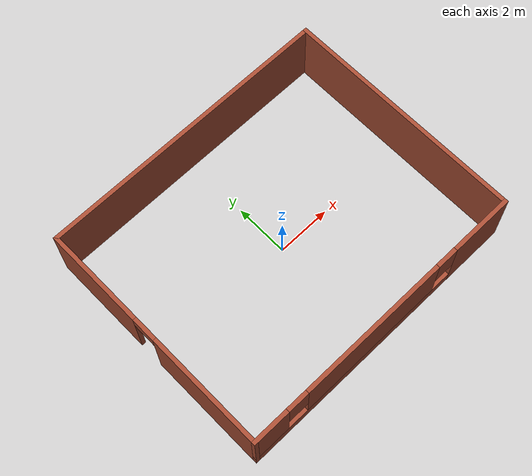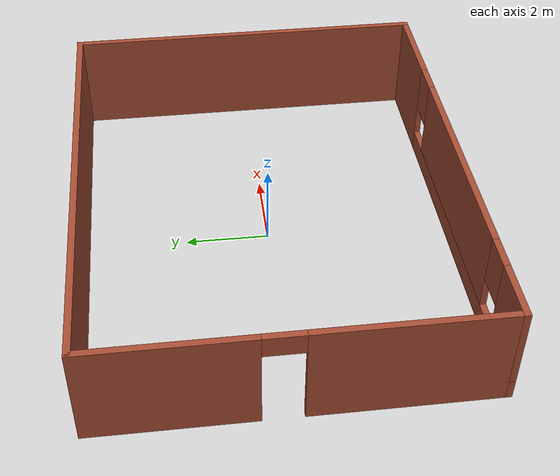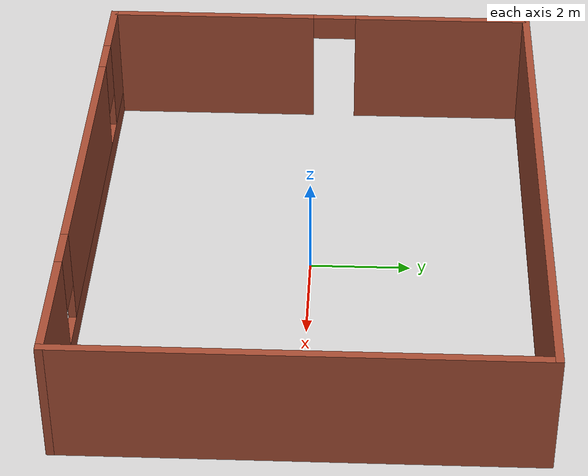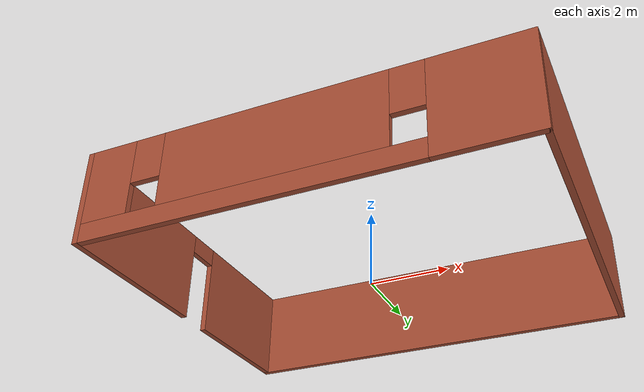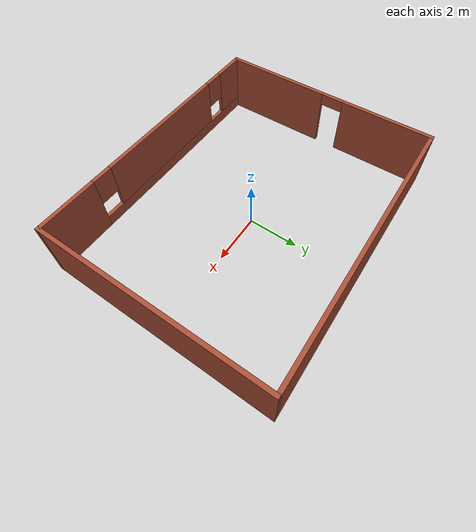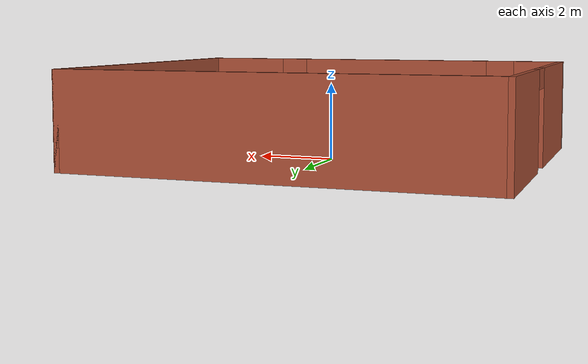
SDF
<?xml version='1.0'?>
<sdf version='1.6'>
  <model name='basicRecBuilding'>
    <link name='Wall_2'>
      <pose frame=''>-5.425 0 0 0 -0 1.5708</pose>
      <self_collide>0</self_collide>
      <kinematic>0</kinematic>
      <visual name='Wall_2_Visual_2'>
        <pose frame=''>0.324133 0 2.25 0 -0 0</pose>
        <geometry>
          <box>
            <size>0.9 0.15 0.5</size>
          </box>
        </geometry>
        <material>
          <script>
            <uri>file://media/materials/scripts/gazebo.material</uri>
            <name>Gazebo/Bricks</name>
          </script>
          <ambient>1 1 1 1</ambient>
          <shader type='pixel'/>
          <diffuse>1 1 1 1</diffuse>
          <specular>0.2 0.2 0.2 1</specular>
          <emissive>0 0 0 1</emissive>
        </material>
        <meta>
          <layer>0</layer>
        </meta>
        <transparency>0</transparency>
        <cast_shadows>1</cast_shadows>
      </visual>
      <visual name='Wall_2_Visual_1'>
        <pose frame=''>2.63707 0 1.25 0 -0 0</pose>
        <geometry>
          <box>
            <size>3.72587 0.15 2.5</size>
          </box>
        </geometry>
        <material>
          <script>
            <uri>file://media/materials/scripts/gazebo.material</uri>
            <name>Gazebo/Bricks</name>
          </script>
          <ambient>1 1 1 1</ambient>
          <shader type='pixel'/>
          <diffuse>1 1 1 1</diffuse>
          <specular>0.2 0.2 0.2 1</specular>
          <emissive>0 0 0 1</emissive>
        </material>
        <meta>
          <layer>0</layer>
        </meta>
        <transparency>0</transparency>
        <cast_shadows>1</cast_shadows>
      </visual>
      <visual name='Wall_2_Visual_0'>
        <pose frame=''>-2.31293 0 1.25 0 -0 0</pose>
        <geometry>
          <box>
            <size>4.37413 0.15 2.5</size>
          </box>
        </geometry>
        <material>
          <script>
            <uri>file://media/materials/scripts/gazebo.material</uri>
            <name>Gazebo/Bricks</name>
          </script>
          <ambient>1 1 1 1</ambient>
          <shader type='pixel'/>
          <diffuse>1 1 1 1</diffuse>
          <specular>0.2 0.2 0.2 1</specular>
          <emissive>0 0 0 1</emissive>
        </material>
        <meta>
          <layer>0</layer>
        </meta>
        <transparency>0</transparency>
        <cast_shadows>1</cast_shadows>
      </visual>
      <collision name='Wall_2_Collision_1'>
        <laser_retro>0</laser_retro>
        <max_contacts>10</max_contacts>
        <pose frame=''>2.63707 0 1.25 0 -0 0</pose>
        <geometry>
          <box>
            <size>3.72587 0.15 2.5</size>
          </box>
        </geometry>
        <surface>
          <friction>
            <ode>
              <mu>1</mu>
              <mu2>1</mu2>
              <fdir1>0 0 0</fdir1>
              <slip1>0</slip1>
              <slip2>0</slip2>
            </ode>
            <torsional>
              <coefficient>1</coefficient>
              <patch_radius>0</patch_radius>
              <surface_radius>0</surface_radius>
              <use_patch_radius>1</use_patch_radius>
              <ode>
                <slip>0</slip>
              </ode>
            </torsional>
          </friction>
          <bounce>
            <restitution_coefficient>0</restitution_coefficient>
            <threshold>1e+06</threshold>
          </bounce>
          <contact>
            <collide_without_contact>0</collide_without_contact>
            <collide_without_contact_bitmask>1</collide_without_contact_bitmask>
            <collide_bitmask>1</collide_bitmask>
            <ode>
              <soft_cfm>0</soft_cfm>
              <soft_erp>0.2</soft_erp>
              <kp>1e+13</kp>
              <kd>1</kd>
              <max_vel>0.01</max_vel>
              <min_depth>0</min_depth>
            </ode>
            <bullet>
              <split_impulse>1</split_impulse>
              <split_impulse_penetration_threshold>-0.01</split_impulse_penetration_threshold>
              <soft_cfm>0</soft_cfm>
              <soft_erp>0.2</soft_erp>
              <kp>1e+13</kp>
              <kd>1</kd>
            </bullet>
          </contact>
        </surface>
      </collision>
      <collision name='Wall_2_Collision_0'>
        <laser_retro>0</laser_retro>
        <max_contacts>10</max_contacts>
        <pose frame=''>-2.31293 0 1.25 0 -0 0</pose>
        <geometry>
          <box>
            <size>4.37413 0.15 2.5</size>
          </box>
        </geometry>
        <surface>
          <friction>
            <ode>
              <mu>1</mu>
              <mu2>1</mu2>
              <fdir1>0 0 0</fdir1>
              <slip1>0</slip1>
              <slip2>0</slip2>
            </ode>
            <torsional>
              <coefficient>1</coefficient>
              <patch_radius>0</patch_radius>
              <surface_radius>0</surface_radius>
              <use_patch_radius>1</use_patch_radius>
              <ode>
                <slip>0</slip>
              </ode>
            </torsional>
          </friction>
          <bounce>
            <restitution_coefficient>0</restitution_coefficient>
            <threshold>1e+06</threshold>
          </bounce>
          <contact>
            <collide_without_contact>0</collide_without_contact>
            <collide_without_contact_bitmask>1</collide_without_contact_bitmask>
            <collide_bitmask>1</collide_bitmask>
            <ode>
              <soft_cfm>0</soft_cfm>
              <soft_erp>0.2</soft_erp>
              <kp>1e+13</kp>
              <kd>1</kd>
              <max_vel>0.01</max_vel>
              <min_depth>0</min_depth>
            </ode>
            <bullet>
              <split_impulse>1</split_impulse>
              <split_impulse_penetration_threshold>-0.01</split_impulse_penetration_threshold>
              <soft_cfm>0</soft_cfm>
              <soft_erp>0.2</soft_erp>
              <kp>1e+13</kp>
              <kd>1</kd>
            </bullet>
          </contact>
        </surface>
      </collision>
      <collision name='Wall_2_Collision_2'>
        <laser_retro>0</laser_retro>
        <max_contacts>10</max_contacts>
        <pose frame=''>0.324133 0 2.25 0 -0 0</pose>
        <geometry>
          <box>
            <size>0.9 0.15 0.5</size>
          </box>
        </geometry>
        <surface>
          <friction>
            <ode>
              <mu>1</mu>
              <mu2>1</mu2>
              <fdir1>0 0 0</fdir1>
              <slip1>0</slip1>
              <slip2>0</slip2>
            </ode>
            <torsional>
              <coefficient>1</coefficient>
              <patch_radius>0</patch_radius>
              <surface_radius>0</surface_radius>
              <use_patch_radius>1</use_patch_radius>
              <ode>
                <slip>0</slip>
              </ode>
            </torsional>
          </friction>
          <bounce>
            <restitution_coefficient>0</restitution_coefficient>
            <threshold>1e+06</threshold>
          </bounce>
          <contact>
            <collide_without_contact>0</collide_without_contact>
            <collide_without_contact_bitmask>1</collide_without_contact_bitmask>
            <collide_bitmask>1</collide_bitmask>
            <ode>
              <soft_cfm>0</soft_cfm>
              <soft_erp>0.2</soft_erp>
              <kp>1e+13</kp>
              <kd>1</kd>
              <max_vel>0.01</max_vel>
              <min_depth>0</min_depth>
            </ode>
            <bullet>
              <split_impulse>1</split_impulse>
              <split_impulse_penetration_threshold>-0.01</split_impulse_penetration_threshold>
              <soft_cfm>0</soft_cfm>
              <soft_erp>0.2</soft_erp>
              <kp>1e+13</kp>
              <kd>1</kd>
            </bullet>
          </contact>
        </surface>
      </collision>
    </link>
    <link name='Wall_3'>
      <pose frame=''>0 4.425 0 0 -0 0</pose>
      <self_collide>0</self_collide>
      <kinematic>0</kinematic>
      <visual name='Wall_3_Visual'>
        <pose frame=''>0 0 1.25 0 -0 0</pose>
        <geometry>
          <box>
            <size>11 0.15 2.5</size>
          </box>
        </geometry>
        <material>
          <script>
            <uri>file://media/materials/scripts/gazebo.material</uri>
            <name>Gazebo/Bricks</name>
          </script>
          <ambient>0.760784 0.662745 0.627451 1</ambient>
          <shader type='pixel'/>
          <diffuse>1 1 1 1</diffuse>
          <specular>0.2 0.2 0.2 1</specular>
          <emissive>0 0 0 1</emissive>
        </material>
        <meta>
          <layer>0</layer>
        </meta>
        <transparency>0</transparency>
        <cast_shadows>1</cast_shadows>
      </visual>
      <collision name='Wall_3_Collision'>
        <laser_retro>0</laser_retro>
        <max_contacts>10</max_contacts>
        <pose frame=''>0 0 1.25 0 -0 0</pose>
        <geometry>
          <box>
            <size>11 0.15 2.5</size>
          </box>
        </geometry>
        <surface>
          <friction>
            <ode>
              <mu>1</mu>
              <mu2>1</mu2>
              <fdir1>0 0 0</fdir1>
              <slip1>0</slip1>
              <slip2>0</slip2>
            </ode>
            <torsional>
              <coefficient>1</coefficient>
              <patch_radius>0</patch_radius>
              <surface_radius>0</surface_radius>
              <use_patch_radius>1</use_patch_radius>
              <ode>
                <slip>0</slip>
              </ode>
            </torsional>
          </friction>
          <bounce>
            <restitution_coefficient>0</restitution_coefficient>
            <threshold>1e+06</threshold>
          </bounce>
          <contact>
            <collide_without_contact>0</collide_without_contact>
            <collide_without_contact_bitmask>1</collide_without_contact_bitmask>
            <collide_bitmask>1</collide_bitmask>
            <ode>
              <soft_cfm>0</soft_cfm>
              <soft_erp>0.2</soft_erp>
              <kp>1e+13</kp>
              <kd>1</kd>
              <max_vel>0.01</max_vel>
              <min_depth>0</min_depth>
            </ode>
            <bullet>
              <split_impulse>1</split_impulse>
              <split_impulse_penetration_threshold>-0.01</split_impulse_penetration_threshold>
              <soft_cfm>0</soft_cfm>
              <soft_erp>0.2</soft_erp>
              <kp>1e+13</kp>
              <kd>1</kd>
            </bullet>
          </contact>
        </surface>
      </collision>
    </link>
    <link name='Wall_4'>
      <pose frame=''>5.425 0 0 0 0 -1.5708</pose>
      <self_collide>0</self_collide>
      <kinematic>0</kinematic>
      <visual name='Wall_4_Visual'>
        <pose frame=''>0 0 1.25 0 -0 0</pose>
        <geometry>
          <box>
            <size>9 0.15 2.5</size>
          </box>
        </geometry>
        <material>
          <script>
            <uri>file://media/materials/scripts/gazebo.material</uri>
            <name>Gazebo/Bricks</name>
          </script>
          <ambient>0.760784 0.662745 0.627451 1</ambient>
          <shader type='pixel'/>
          <diffuse>1 1 1 1</diffuse>
          <specular>0.2 0.2 0.2 1</specular>
          <emissive>0 0 0 1</emissive>
        </material>
        <meta>
          <layer>0</layer>
        </meta>
        <transparency>0</transparency>
        <cast_shadows>1</cast_shadows>
      </visual>
      <collision name='Wall_4_Collision'>
        <laser_retro>0</laser_retro>
        <max_contacts>10</max_contacts>
        <pose frame=''>0 0 1.25 0 -0 0</pose>
        <geometry>
          <box>
            <size>9 0.15 2.5</size>
          </box>
        </geometry>
        <surface>
          <friction>
            <ode>
              <mu>1</mu>
              <mu2>1</mu2>
              <fdir1>0 0 0</fdir1>
              <slip1>0</slip1>
              <slip2>0</slip2>
            </ode>
            <torsional>
              <coefficient>1</coefficient>
              <patch_radius>0</patch_radius>
              <surface_radius>0</surface_radius>
              <use_patch_radius>1</use_patch_radius>
              <ode>
                <slip>0</slip>
              </ode>
            </torsional>
          </friction>
          <bounce>
            <restitution_coefficient>0</restitution_coefficient>
            <threshold>1e+06</threshold>
          </bounce>
          <contact>
            <collide_without_contact>0</collide_without_contact>
            <collide_without_contact_bitmask>1</collide_without_contact_bitmask>
            <collide_bitmask>1</collide_bitmask>
            <ode>
              <soft_cfm>0</soft_cfm>
              <soft_erp>0.2</soft_erp>
              <kp>1e+13</kp>
              <kd>1</kd>
              <max_vel>0.01</max_vel>
              <min_depth>0</min_depth>
            </ode>
            <bullet>
              <split_impulse>1</split_impulse>
              <split_impulse_penetration_threshold>-0.01</split_impulse_penetration_threshold>
              <soft_cfm>0</soft_cfm>
              <soft_erp>0.2</soft_erp>
              <kp>1e+13</kp>
              <kd>1</kd>
            </bullet>
          </contact>
        </surface>
      </collision>
    </link>
    <link name='Wall_5'>
      <pose frame=''>0 -4.425 0 0 -0 3.14159</pose>
      <self_collide>0</self_collide>
      <kinematic>0</kinematic>
      <visual name='Wall_5_Visual_0'>
        <pose frame=''>-4.30944 0 1.25 0 -0 0</pose>
        <geometry>
          <box>
            <size>2.38112 0.15 2.5</size>
          </box>
        </geometry>
        <material>
          <script>
            <uri>file://media/materials/scripts/gazebo.material</uri>
            <name>Gazebo/Bricks</name>
          </script>
          <ambient>0.760784 0.662745 0.627451 1</ambient>
          <shader type='pixel'/>
          <diffuse>1 1 1 1</diffuse>
          <specular>0.2 0.2 0.2 1</specular>
          <emissive>0 0 0 1</emissive>
        </material>
        <meta>
          <layer>0</layer>
        </meta>
        <transparency>0</transparency>
        <cast_shadows>1</cast_shadows>
      </visual>
      <visual name='Wall_5_Visual_1'>
        <pose frame=''>1.19056 0 0.25 0 -0 0</pose>
        <geometry>
          <box>
            <size>8.61888 0.15 0.5</size>
          </box>
        </geometry>
        <material>
          <script>
            <uri>file://media/materials/scripts/gazebo.material</uri>
            <name>Gazebo/Bricks</name>
          </script>
          <ambient>0.760784 0.662745 0.627451 1</ambient>
          <shader type='pixel'/>
          <diffuse>1 1 1 1</diffuse>
          <specular>0.2 0.2 0.2 1</specular>
          <emissive>0 0 0 1</emissive>
        </material>
        <meta>
          <layer>0</layer>
        </meta>
        <transparency>0</transparency>
        <cast_shadows>1</cast_shadows>
      </visual>
      <visual name='Wall_5_Visual_2'>
        <pose frame=''>0.491179 0 1.5 0 -0 0</pose>
        <geometry>
          <box>
            <size>5.62012 0.15 2</size>
          </box>
        </geometry>
        <material>
          <script>
            <uri>file://media/materials/scripts/gazebo.material</uri>
            <name>Gazebo/Bricks</name>
          </script>
          <ambient>0.760784 0.662745 0.627451 1</ambient>
          <shader type='pixel'/>
          <diffuse>1 1 1 1</diffuse>
          <specular>0.2 0.2 0.2 1</specular>
          <emissive>0 0 0 1</emissive>
        </material>
        <meta>
          <layer>0</layer>
        </meta>
        <transparency>0</transparency>
        <cast_shadows>1</cast_shadows>
      </visual>
      <visual name='Wall_5_Visual_3'>
        <pose frame=''>4.80062 0 1.5 0 -0 0</pose>
        <geometry>
          <box>
            <size>1.39876 0.15 2</size>
          </box>
        </geometry>
        <material>
          <script>
            <uri>file://media/materials/scripts/gazebo.material</uri>
            <name>Gazebo/Bricks</name>
          </script>
          <ambient>0.760784 0.662745 0.627451 1</ambient>
          <shader type='pixel'/>
          <diffuse>1 1 1 1</diffuse>
          <specular>0.2 0.2 0.2 1</specular>
          <emissive>0 0 0 1</emissive>
        </material>
        <meta>
          <layer>0</layer>
        </meta>
        <transparency>0</transparency>
        <cast_shadows>1</cast_shadows>
      </visual>
      <visual name='Wall_5_Visual_4'>
        <pose frame=''>-2.71888 0 1.9 0 -0 0</pose>
        <geometry>
          <box>
            <size>0.8 0.15 1.2</size>
          </box>
        </geometry>
        <material>
          <script>
            <uri>file://media/materials/scripts/gazebo.material</uri>
            <name>Gazebo/Bricks</name>
          </script>
          <ambient>0.760784 0.662745 0.627451 1</ambient>
          <shader type='pixel'/>
          <diffuse>1 1 1 1</diffuse>
          <specular>0.2 0.2 0.2 1</specular>
          <emissive>0 0 0 1</emissive>
        </material>
        <meta>
          <layer>0</layer>
        </meta>
        <transparency>0</transparency>
        <cast_shadows>1</cast_shadows>
      </visual>
      <visual name='Wall_5_Visual_5'>
        <pose frame=''>3.70124 0 1.9 0 -0 0</pose>
        <geometry>
          <box>
            <size>0.8 0.15 1.2</size>
          </box>
        </geometry>
        <material>
          <script>
            <uri>file://media/materials/scripts/gazebo.material</uri>
            <name>Gazebo/Bricks</name>
          </script>
          <ambient>0.760784 0.662745 0.627451 1</ambient>
          <shader type='pixel'/>
          <diffuse>1 1 1 1</diffuse>
          <specular>0.2 0.2 0.2 1</specular>
          <emissive>0 0 0 1</emissive>
        </material>
        <meta>
          <layer>0</layer>
        </meta>
        <transparency>0</transparency>
        <cast_shadows>1</cast_shadows>
      </visual>
      <collision name='Wall_5_Collision_0'>
        <laser_retro>0</laser_retro>
        <max_contacts>10</max_contacts>
        <pose frame=''>-4.30944 0 1.25 0 -0 0</pose>
        <geometry>
          <box>
            <size>2.38112 0.15 2.5</size>
          </box>
        </geometry>
        <surface>
          <friction>
            <ode>
              <mu>1</mu>
              <mu2>1</mu2>
              <fdir1>0 0 0</fdir1>
              <slip1>0</slip1>
              <slip2>0</slip2>
            </ode>
            <torsional>
              <coefficient>1</coefficient>
              <patch_radius>0</patch_radius>
              <surface_radius>0</surface_radius>
              <use_patch_radius>1</use_patch_radius>
              <ode>
                <slip>0</slip>
              </ode>
            </torsional>
          </friction>
          <bounce>
            <restitution_coefficient>0</restitution_coefficient>
            <threshold>1e+06</threshold>
          </bounce>
          <contact>
            <collide_without_contact>0</collide_without_contact>
            <collide_without_contact_bitmask>1</collide_without_contact_bitmask>
            <collide_bitmask>1</collide_bitmask>
            <ode>
              <soft_cfm>0</soft_cfm>
              <soft_erp>0.2</soft_erp>
              <kp>1e+13</kp>
              <kd>1</kd>
              <max_vel>0.01</max_vel>
              <min_depth>0</min_depth>
            </ode>
            <bullet>
              <split_impulse>1</split_impulse>
              <split_impulse_penetration_threshold>-0.01</split_impulse_penetration_threshold>
              <soft_cfm>0</soft_cfm>
              <soft_erp>0.2</soft_erp>
              <kp>1e+13</kp>
              <kd>1</kd>
            </bullet>
          </contact>
        </surface>
      </collision>
      <collision name='Wall_5_Collision_1'>
        <laser_retro>0</laser_retro>
        <max_contacts>10</max_contacts>
        <pose frame=''>1.19056 0 0.25 0 -0 0</pose>
        <geometry>
          <box>
            <size>8.61888 0.15 0.5</size>
          </box>
        </geometry>
        <surface>
          <friction>
            <ode>
              <mu>1</mu>
              <mu2>1</mu2>
              <fdir1>0 0 0</fdir1>
              <slip1>0</slip1>
              <slip2>0</slip2>
            </ode>
            <torsional>
              <coefficient>1</coefficient>
              <patch_radius>0</patch_radius>
              <surface_radius>0</surface_radius>
              <use_patch_radius>1</use_patch_radius>
              <ode>
                <slip>0</slip>
              </ode>
            </torsional>
          </friction>
          <bounce>
            <restitution_coefficient>0</restitution_coefficient>
            <threshold>1e+06</threshold>
          </bounce>
          <contact>
            <collide_without_contact>0</collide_without_contact>
            <collide_without_contact_bitmask>1</collide_without_contact_bitmask>
            <collide_bitmask>1</collide_bitmask>
            <ode>
              <soft_cfm>0</soft_cfm>
              <soft_erp>0.2</soft_erp>
              <kp>1e+13</kp>
              <kd>1</kd>
              <max_vel>0.01</max_vel>
              <min_depth>0</min_depth>
            </ode>
            <bullet>
              <split_impulse>1</split_impulse>
              <split_impulse_penetration_threshold>-0.01</split_impulse_penetration_threshold>
              <soft_cfm>0</soft_cfm>
              <soft_erp>0.2</soft_erp>
              <kp>1e+13</kp>
              <kd>1</kd>
            </bullet>
          </contact>
        </surface>
      </collision>
      <collision name='Wall_5_Collision_2'>
        <laser_retro>0</laser_retro>
        <max_contacts>10</max_contacts>
        <pose frame=''>0.491179 0 1.5 0 -0 0</pose>
        <geometry>
          <box>
            <size>5.62012 0.15 2</size>
          </box>
        </geometry>
        <surface>
          <friction>
            <ode>
              <mu>1</mu>
              <mu2>1</mu2>
              <fdir1>0 0 0</fdir1>
              <slip1>0</slip1>
              <slip2>0</slip2>
            </ode>
            <torsional>
              <coefficient>1</coefficient>
              <patch_radius>0</patch_radius>
              <surface_radius>0</surface_radius>
              <use_patch_radius>1</use_patch_radius>
              <ode>
                <slip>0</slip>
              </ode>
            </torsional>
          </friction>
          <bounce>
            <restitution_coefficient>0</restitution_coefficient>
            <threshold>1e+06</threshold>
          </bounce>
          <contact>
            <collide_without_contact>0</collide_without_contact>
            <collide_without_contact_bitmask>1</collide_without_contact_bitmask>
            <collide_bitmask>1</collide_bitmask>
            <ode>
              <soft_cfm>0</soft_cfm>
              <soft_erp>0.2</soft_erp>
              <kp>1e+13</kp>
              <kd>1</kd>
              <max_vel>0.01</max_vel>
              <min_depth>0</min_depth>
            </ode>
            <bullet>
              <split_impulse>1</split_impulse>
              <split_impulse_penetration_threshold>-0.01</split_impulse_penetration_threshold>
              <soft_cfm>0</soft_cfm>
              <soft_erp>0.2</soft_erp>
              <kp>1e+13</kp>
              <kd>1</kd>
            </bullet>
          </contact>
        </surface>
      </collision>
      <collision name='Wall_5_Collision_3'>
        <laser_retro>0</laser_retro>
        <max_contacts>10</max_contacts>
        <pose frame=''>4.80062 0 1.5 0 -0 0</pose>
        <geometry>
          <box>
            <size>1.39876 0.15 2</size>
          </box>
        </geometry>
        <surface>
          <friction>
            <ode>
              <mu>1</mu>
              <mu2>1</mu2>
              <fdir1>0 0 0</fdir1>
              <slip1>0</slip1>
              <slip2>0</slip2>
            </ode>
            <torsional>
              <coefficient>1</coefficient>
              <patch_radius>0</patch_radius>
              <surface_radius>0</surface_radius>
              <use_patch_radius>1</use_patch_radius>
              <ode>
                <slip>0</slip>
              </ode>
            </torsional>
          </friction>
          <bounce>
            <restitution_coefficient>0</restitution_coefficient>
            <threshold>1e+06</threshold>
          </bounce>
          <contact>
            <collide_without_contact>0</collide_without_contact>
            <collide_without_contact_bitmask>1</collide_without_contact_bitmask>
            <collide_bitmask>1</collide_bitmask>
            <ode>
              <soft_cfm>0</soft_cfm>
              <soft_erp>0.2</soft_erp>
              <kp>1e+13</kp>
              <kd>1</kd>
              <max_vel>0.01</max_vel>
              <min_depth>0</min_depth>
            </ode>
            <bullet>
              <split_impulse>1</split_impulse>
              <split_impulse_penetration_threshold>-0.01</split_impulse_penetration_threshold>
              <soft_cfm>0</soft_cfm>
              <soft_erp>0.2</soft_erp>
              <kp>1e+13</kp>
              <kd>1</kd>
            </bullet>
          </contact>
        </surface>
      </collision>
      <collision name='Wall_5_Collision_4'>
        <laser_retro>0</laser_retro>
        <max_contacts>10</max_contacts>
        <pose frame=''>-2.71888 0 1.9 0 -0 0</pose>
        <geometry>
          <box>
            <size>0.8 0.15 1.2</size>
          </box>
        </geometry>
        <surface>
          <friction>
            <ode>
              <mu>1</mu>
              <mu2>1</mu2>
              <fdir1>0 0 0</fdir1>
              <slip1>0</slip1>
              <slip2>0</slip2>
            </ode>
            <torsional>
              <coefficient>1</coefficient>
              <patch_radius>0</patch_radius>
              <surface_radius>0</surface_radius>
              <use_patch_radius>1</use_patch_radius>
              <ode>
                <slip>0</slip>
              </ode>
            </torsional>
          </friction>
          <bounce>
            <restitution_coefficient>0</restitution_coefficient>
            <threshold>1e+06</threshold>
          </bounce>
          <contact>
            <collide_without_contact>0</collide_without_contact>
            <collide_without_contact_bitmask>1</collide_without_contact_bitmask>
            <collide_bitmask>1</collide_bitmask>
            <ode>
              <soft_cfm>0</soft_cfm>
              <soft_erp>0.2</soft_erp>
              <kp>1e+13</kp>
              <kd>1</kd>
              <max_vel>0.01</max_vel>
              <min_depth>0</min_depth>
            </ode>
            <bullet>
              <split_impulse>1</split_impulse>
              <split_impulse_penetration_threshold>-0.01</split_impulse_penetration_threshold>
              <soft_cfm>0</soft_cfm>
              <soft_erp>0.2</soft_erp>
              <kp>1e+13</kp>
              <kd>1</kd>
            </bullet>
          </contact>
        </surface>
      </collision>
      <collision name='Wall_5_Collision_5'>
        <laser_retro>0</laser_retro>
        <max_contacts>10</max_contacts>
        <pose frame=''>3.70124 0 1.9 0 -0 0</pose>
        <geometry>
          <box>
            <size>0.8 0.15 1.2</size>
          </box>
        </geometry>
        <surface>
          <friction>
            <ode>
              <mu>1</mu>
              <mu2>1</mu2>
              <fdir1>0 0 0</fdir1>
              <slip1>0</slip1>
              <slip2>0</slip2>
            </ode>
            <torsional>
              <coefficient>1</coefficient>
              <patch_radius>0</patch_radius>
              <surface_radius>0</surface_radius>
              <use_patch_radius>1</use_patch_radius>
              <ode>
                <slip>0</slip>
              </ode>
            </torsional>
          </friction>
          <bounce>
            <restitution_coefficient>0</restitution_coefficient>
            <threshold>1e+06</threshold>
          </bounce>
          <contact>
            <collide_without_contact>0</collide_without_contact>
            <collide_without_contact_bitmask>1</collide_without_contact_bitmask>
            <collide_bitmask>1</collide_bitmask>
            <ode>
              <soft_cfm>0</soft_cfm>
              <soft_erp>0.2</soft_erp>
              <kp>1e+13</kp>
              <kd>1</kd>
              <max_vel>0.01</max_vel>
              <min_depth>0</min_depth>
            </ode>
            <bullet>
              <split_impulse>1</split_impulse>
              <split_impulse_penetration_threshold>-0.01</split_impulse_penetration_threshold>
              <soft_cfm>0</soft_cfm>
              <soft_erp>0.2</soft_erp>
              <kp>1e+13</kp>
              <kd>1</kd>
            </bullet>
          </contact>
        </surface>
      </collision>
    </link>
    <static>1</static>
    <allow_auto_disable>1</allow_auto_disable>
  </model>
</sdf>
